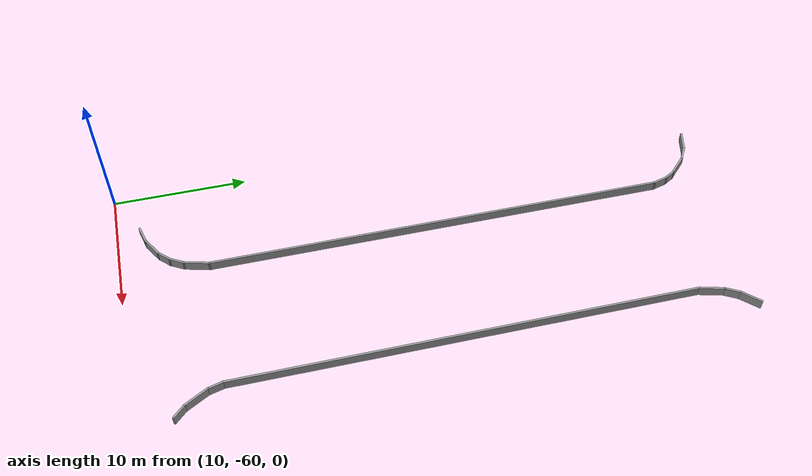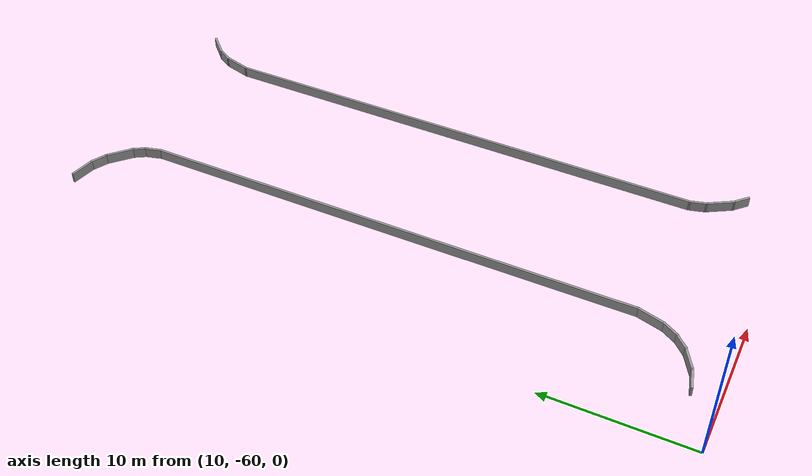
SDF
<sdf version="1.6">
 <world name="default">
  <model name="Ic_Duvarlar">
   <pose>8.43 0.084176 0 0 -0 0</pose>
   <link name="Wall_31">
    <collision name="Wall_31_Collision">
     <geometry><box><size>1.5 0.15 0.75</size></box></geometry>
     <pose>0 0 0.375 0 -0 0</pose>
    </collision>
    <visual name="Wall_31_Visual">
     <pose>0 0 0.375 0 -0 0</pose>
     <geometry><box><size>1.5 0.15 0.75</size></box></geometry>
     <material>
      <script><uri>file://media/materials/scripts/gazebo.material</uri><name>Gazebo/Grey</name></script>
      <ambient>1 1 1 1</ambient>
     </material>
    </visual>
    <pose>5.88585 -58.1376 0 0 -0 0.262225</pose>
   </link>
   <link name="Wall_33">
    <collision name="Wall_33_Collision">
     <geometry><box><size>1.75 0.15 0.75</size></box></geometry>
     <pose>0 0 0.375 0 -0 0</pose>
    </collision>
    <visual name="Wall_33_Visual">
     <pose>0 0 0.375 0 -0 0</pose>
     <geometry><box><size>1.75 0.15 0.75</size></box></geometry>
     <material>
      <script><uri>file://media/materials/scripts/gazebo.material</uri><name>Gazebo/Grey</name></script>
      <ambient>1 1 1 1</ambient>
     </material>
    </visual>
    <pose>7.23035 -57.5626 0 0 -0 0.523799</pose>
   </link>
   <link name="Wall_34">
    <collision name="Wall_34_Collision">
     <geometry><box><size>1.25 0.15 0.75</size></box></geometry>
     <pose>0 0 0.375 0 -0 0</pose>
    </collision>
    <visual name="Wall_34_Visual">
     <pose>0 0 0.375 0 -0 0</pose>
     <geometry><box><size>1.25 0.15 0.75</size></box></geometry>
     <material>
      <script><uri>file://media/materials/scripts/gazebo.material</uri><name>Gazebo/Grey</name></script>
      <ambient>1 1 1 1</ambient>
     </material>
    </visual>
    <pose>8.31185 -56.7741 0 0 -0 0.784755</pose>
   </link>
   <link name="Wall_35">
    <collision name="Wall_35_Collision">
     <geometry><box><size>1.25 0.15 0.75</size></box></geometry>
     <pose>0 0 0.375 0 -0 0</pose>
    </collision>
    <visual name="Wall_35_Visual">
     <pose>0 0 0.375 0 -0 0</pose>
     <geometry><box><size>1.25 0.15 0.75</size></box></geometry>
     <material>
      <script><uri>file://media/materials/scripts/gazebo.material</uri><name>Gazebo/Grey</name></script>
      <ambient>1 1 1 1</ambient>
     </material>
    </visual>
    <pose>8.97585 -55.9091 0 0 -0 1.04737</pose>
   </link>
   <link name="Wall_37">
    <collision name="Wall_37_Collision">
     <geometry><box><size>2 0.15 0.75</size></box></geometry>
     <pose>0 0 0.375 0 -0 0</pose>
    </collision>
    <visual name="Wall_37_Visual">
     <pose>0 0 0.375 0 -0 0</pose>
     <geometry><box><size>2 0.15 0.75</size></box></geometry>
     <material>
      <script><uri>file://media/materials/scripts/gazebo.material</uri><name>Gazebo/Grey</name></script>
      <ambient>1 1 1 1</ambient>
     </material>
    </visual>
    <pose>9.49035 -54.5391 0 0 -0 1.30891</pose>
   </link>
   <link name="Wall_38">
    <collision name="Wall_38_Collision">
     <geometry><box><size>34.5 0.15 0.75</size></box></geometry>
     <pose>0 0 0.375 0 -0 0</pose>
    </collision>
    <visual name="Wall_38_Visual">
     <pose>0 0 0.375 0 -0 0</pose>
     <geometry><box><size>34.5 0.15 0.75</size></box></geometry>
     <material>
      <script><uri>file://media/materials/scripts/gazebo.material</uri><name>Gazebo/Grey</name></script>
      <ambient>1 1 1 1</ambient>
     </material>
    </visual>
    <pose>9.72985 -36.4706 0 0 -0 1.5708</pose>
   </link>
   <link name="Wall_39">
    <collision name="Wall_39_Collision">
     <geometry><box><size>1.25 0.15 0.75</size></box></geometry>
     <pose>0 0 0.375 0 -0 0</pose>
    </collision>
    <visual name="Wall_39_Visual">
     <pose>0 0 0.375 0 -0 0</pose>
     <geometry><box><size>1.25 0.15 0.75</size></box></geometry>
     <material>
      <script><uri>file://media/materials/scripts/gazebo.material</uri><name>Gazebo/Grey</name></script>
      <ambient>1 1 1 1</ambient>
     </material>
    </visual>
    <pose>9.58735 -18.7646 0 0 -0 1.83298</pose>
   </link>
   <link name="Wall_40">
    <collision name="Wall_40_Collision">
     <geometry><box><size>1 0.15 0.75</size></box></geometry>
     <pose>0 0 0.375 0 -0 0</pose>
    </collision>
    <visual name="Wall_40_Visual">
     <pose>0 0 0.375 0 -0 0</pose>
     <geometry><box><size>1 0.15 0.75</size></box></geometry>
     <material>
      <script><uri>file://media/materials/scripts/gazebo.material</uri><name>Gazebo/Grey</name></script>
      <ambient>1 1 1 1</ambient>
     </material>
    </visual>
    <pose>9.23235 -17.8651 0 0 -0 2.09388</pose>
   </link>
   <link name="Wall_41">
    <collision name="Wall_41_Collision">
     <geometry><box><size>2 0.15 0.75</size></box></geometry>
     <pose>0 0 0.375 0 -0 0</pose>
    </collision>
    <visual name="Wall_41_Visual">
     <pose>0 0 0.375 0 -0 0</pose>
     <geometry><box><size>2 0.15 0.75</size></box></geometry>
     <material>
      <script><uri>file://media/materials/scripts/gazebo.material</uri><name>Gazebo/Grey</name></script>
      <ambient>1 1 1 1</ambient>
     </material>
    </visual>
    <pose>8.36585 -16.8426 0 0 -0 2.35619</pose>
   </link>
   <link name="Wall_42">
    <collision name="Wall_42_Collision">
     <geometry><box><size>1.25 0.15 0.75</size></box></geometry>
     <pose>0 0 0.375 0 -0 0</pose>
    </collision>
    <visual name="Wall_42_Visual">
     <pose>0 0 0.375 0 -0 0</pose>
     <geometry><box><size>1.25 0.15 0.75</size></box></geometry>
     <material>
      <script><uri>file://media/materials/scripts/gazebo.material</uri><name>Gazebo/Grey</name></script>
      <ambient>1 1 1 1</ambient>
     </material>
    </visual>
    <pose>7.23585 -15.9136 0 0 -0 2.61771</pose>
   </link>
   <link name="Wall_44">
    <collision name="Wall_44_Collision">
     <geometry><box><size>1.75 0.15 0.75</size></box></geometry>
     <pose>0 0 0.375 0 -0 0</pose>
    </collision>
    <visual name="Wall_44_Visual">
     <pose>0 0 0.375 0 -0 0</pose>
     <geometry><box><size>1.75 0.15 0.75</size></box></geometry>
     <material>
      <script><uri>file://media/materials/scripts/gazebo.material</uri><name>Gazebo/Grey</name></script>
      <ambient>1 1 1 1</ambient>
     </material>
    </visual>
    <pose>5.98685 -15.4316 0 0 -0 2.87994</pose>
   </link>
   <link name="Wall_73">
    <collision name="Wall_73_Collision">
     <geometry><box><size>1.75 0.15 0.75</size></box></geometry>
     <pose>0 0 0.375 0 -0 0</pose>
    </collision>
    <visual name="Wall_73_Visual">
     <pose>0 0 0.375 0 -0 0</pose>
     <geometry><box><size>1.75 0.15 0.75</size></box></geometry>
     <material>
      <script><uri>file://media/materials/scripts/gazebo.material</uri><name>Gazebo/Grey</name></script>
      <ambient>1 1 1 1</ambient>
     </material>
    </visual>
    <pose>21.7888 -16.6946 0 0 0 -2.35619</pose>
   </link>
   <link name="Wall_74">
    <collision name="Wall_74_Collision">
     <geometry><box><size>1.25 0.15 0.75</size></box></geometry>
     <pose>0 0 0.375 0 -0 0</pose>
    </collision>
    <visual name="Wall_74_Visual">
     <pose>0 0 0.375 0 -0 0</pose>
     <geometry><box><size>1.25 0.15 0.75</size></box></geometry>
     <material>
      <script><uri>file://media/materials/scripts/gazebo.material</uri><name>Gazebo/Grey</name></script>
      <ambient>1 1 1 1</ambient>
     </material>
    </visual>
    <pose>20.9478 -17.7366 0 0 0 -2.09468</pose>
   </link>
   <link name="Wall_75">
    <collision name="Wall_75_Collision">
     <geometry><box><size>2 0.15 0.75</size></box></geometry>
     <pose>0 0 0.375 0 -0 0</pose>
    </collision>
    <visual name="Wall_75_Visual">
     <pose>0 0 0.375 0 -0 0</pose>
     <geometry><box><size>2 0.15 0.75</size></box></geometry>
     <material>
      <script><uri>file://media/materials/scripts/gazebo.material</uri><name>Gazebo/Grey</name></script>
      <ambient>1 1 1 1</ambient>
     </material>
    </visual>
    <pose>20.4333 -19.1061 0 0 0 -1.83269</pose>
   </link>
   <link name="Wall_76">
    <collision name="Wall_76_Collision">
     <geometry><box><size>34 0.15 0.75</size></box></geometry>
     <pose>0 0 0.375 0 -0 0</pose>
    </collision>
    <visual name="Wall_76_Visual">
     <pose>0 0 0.375 0 -0 0</pose>
     <geometry><box><size>34 0.15 0.75</size></box></geometry>
     <material>
      <script><uri>file://media/materials/scripts/gazebo.material</uri><name>Gazebo/Grey</name></script>
      <ambient>1 1 1 1</ambient>
     </material>
    </visual>
    <pose>20.1938 -36.9246 0 0 0 -1.5708</pose>
   </link>
   <link name="Wall_77">
    <collision name="Wall_77_Collision">
     <geometry><box><size>1.25 0.15 0.75</size></box></geometry>
     <pose>0 0 0.375 0 -0 0</pose>
    </collision>
    <visual name="Wall_77_Visual">
     <pose>0 0 0.375 0 -0 0</pose>
     <geometry><box><size>1.25 0.15 0.75</size></box></geometry>
     <material>
      <script><uri>file://media/materials/scripts/gazebo.material</uri><name>Gazebo/Grey</name></script>
      <ambient>1 1 1 1</ambient>
     </material>
    </visual>
    <pose>20.3363 -54.3811 0 0 0 -1.30885</pose>
   </link>
   <link name="Wall_78">
    <collision name="Wall_78_Collision">
     <geometry><box><size>2 0.15 0.75</size></box></geometry>
     <pose>0 0 0.375 0 -0 0</pose>
    </collision>
    <visual name="Wall_78_Visual">
     <pose>0 0 0.375 0 -0 0</pose>
     <geometry><box><size>2 0.15 0.75</size></box></geometry>
     <material>
      <script><uri>file://media/materials/scripts/gazebo.material</uri><name>Gazebo/Grey</name></script>
      <ambient>1 1 1 1</ambient>
     </material>
    </visual>
    <pose>20.9413 -55.7136 0 0 0 -1.04716</pose>
   </link>
   <link name="Wall_79">
    <collision name="Wall_79_Collision">
     <geometry><box><size>1.25 0.15 0.75</size></box></geometry>
     <pose>0 0 0.375 0 -0 0</pose>
    </collision>
    <visual name="Wall_79_Visual">
     <pose>0 0 0.375 0 -0 0</pose>
     <geometry><box><size>1.25 0.15 0.75</size></box></geometry>
     <material>
      <script><uri>file://media/materials/scripts/gazebo.material</uri><name>Gazebo/Grey</name></script>
      <ambient>1 1 1 1</ambient>
     </material>
    </visual>
    <pose>21.7928 -56.9036 0 0 0 -0.785398</pose>
   </link>
   <static>1</static>
  </model>
 </world>
</sdf>
